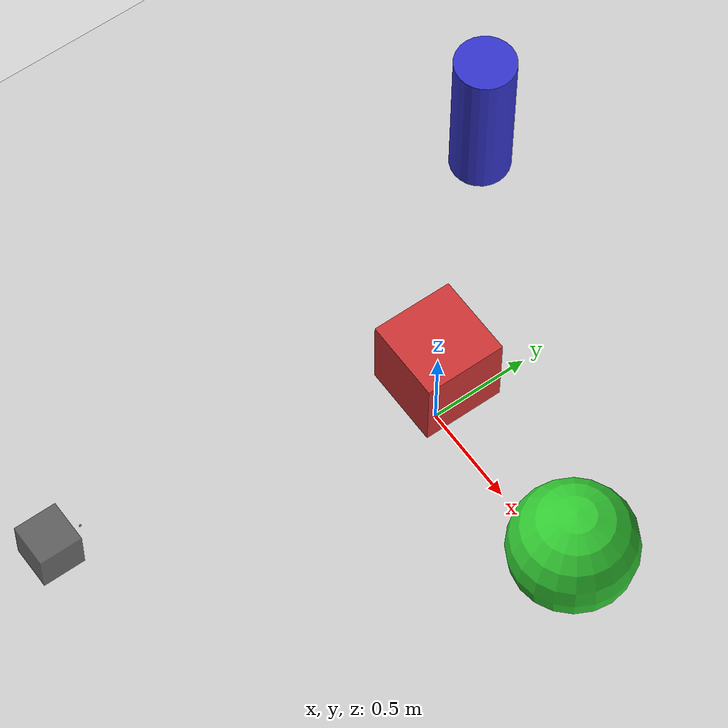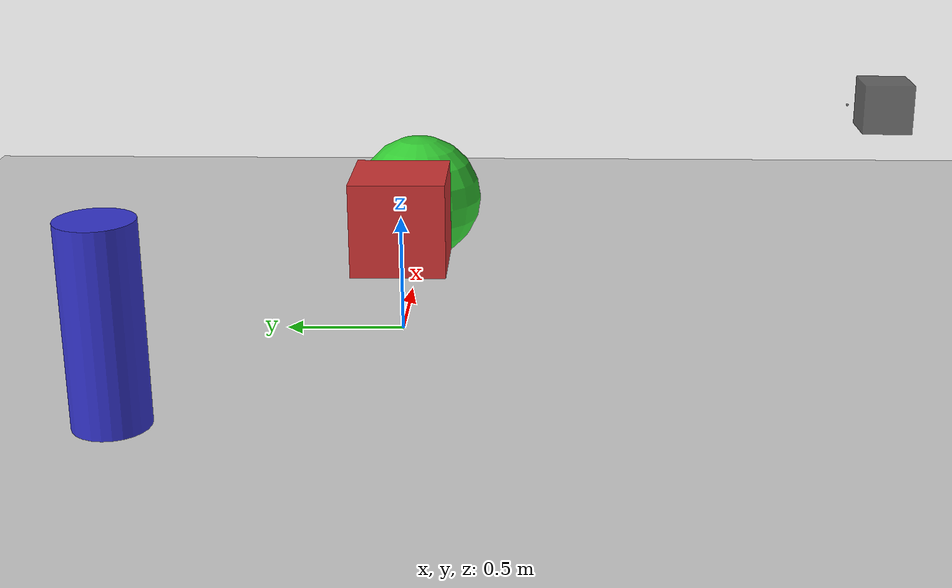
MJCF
<mujoco model="depth_capture_test">
  <compiler autolimits="true"/>

  <extension>
    <plugin plugin="mujoco.rays.depth_capture"/>
  </extension>

  <visual>
    <headlight ambient=".7 .7 .7" diffuse=".2 .2 .2" specular="0.1 0.1 0.1"/>
    <map znear="0.01"/>
  </visual>

  <statistic center="0 0 1" extent="3"/>

  <worldbody>
    <light pos="0 0 3" dir="0 0 -1"/>
    <geom name="floor" pos="0 0 0" type="plane" size="5 5 .1" rgba=".8 .8 .8 1"/>

    <!-- Add some objects to detect -->
    <body name="box1" pos="0 0 0.5">
      <geom type="box" size="0.2 0.2 0.2" rgba=".8 .2 .2 1"/>
    </body>

    <body name="sphere1" pos="1 0 0.3">
      <geom type="sphere" size="0.3" rgba=".2 .8 .2 1"/>
    </body>

    <body name="cylinder1" pos="-1 1 0.4">
      <geom type="cylinder" size="0.15 0.4" rgba=".2 .2 .8 1"/>
    </body>

    <!-- Robot body with depth sensor -->
    <body name="robot" pos="0 -2 1">
      <joint name="x" type="slide" axis="1 0 0" damping="1"/>
      <joint name="y" type="slide" axis="0 1 0" damping="1"/>
      <joint name="z" type="slide" axis="0 0 1" damping="1"/>
      <joint name="rx" axis="1 0 0" springdamper="0.2 1"/>
      <joint name="ry" axis="0 1 0" springdamper="0.2 1"/>

      <geom type="box" size=".1 .1 .1" mass="1.0" rgba=".3 .3 .3 .8"/>

      <!-- Site for the depth sensor, pointing forward (toward +Y) -->
      <site name="depth_sensor" pos="0 0.15 0" euler="0 0 0"/>
    </body>
  </worldbody>

  <sensor>
    <!-- Depth capture sensor attached to the site -->
    <plugin name="depth" plugin="mujoco.rays.depth_capture" objtype="site" objname="depth_sensor">
      <config key="ncol" value="10"/>
      <config key="nrow" value="10"/>
      <config key="fov_x" value="60"/>
      <config key="fov_y" value="60"/>
      <config key="max_distance" value="10"/>
    </plugin>
  </sensor>
</mujoco>
